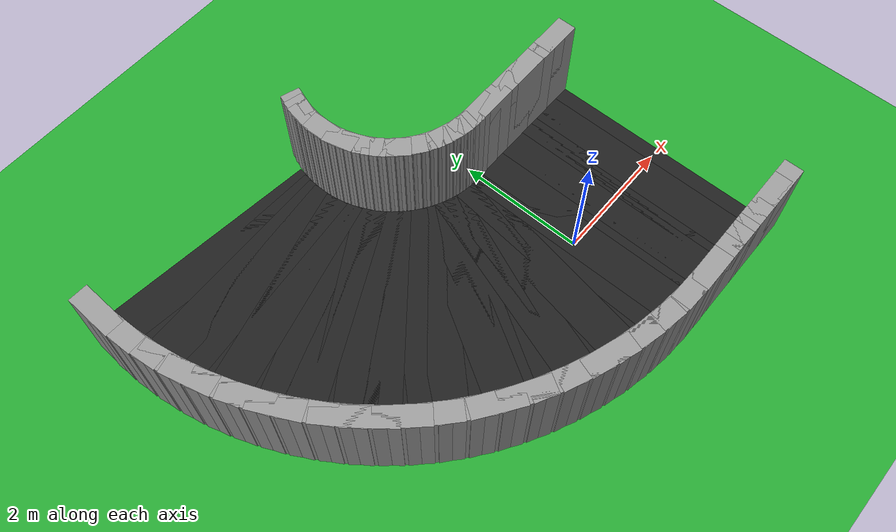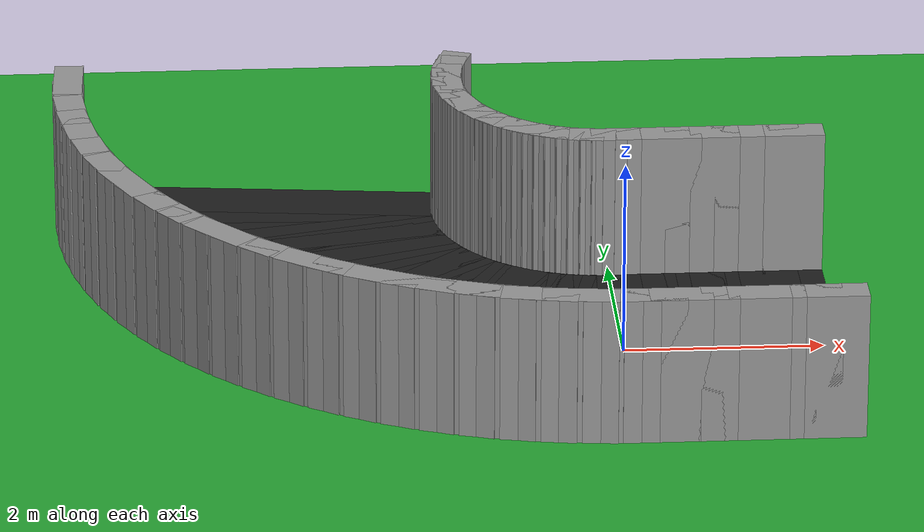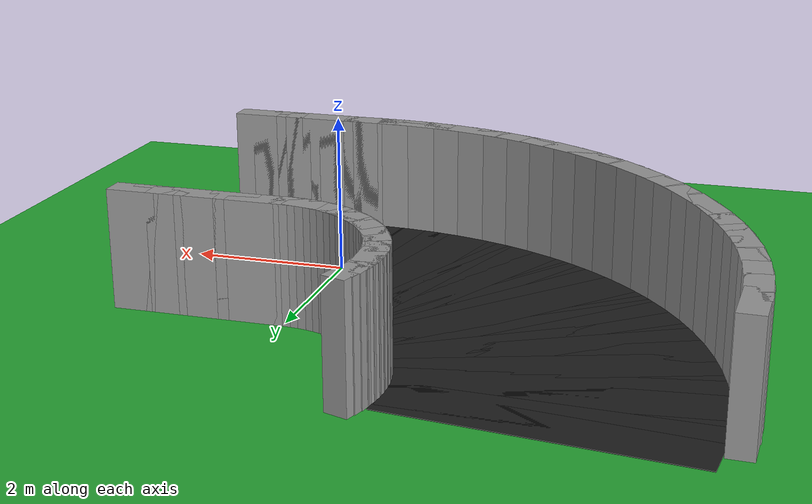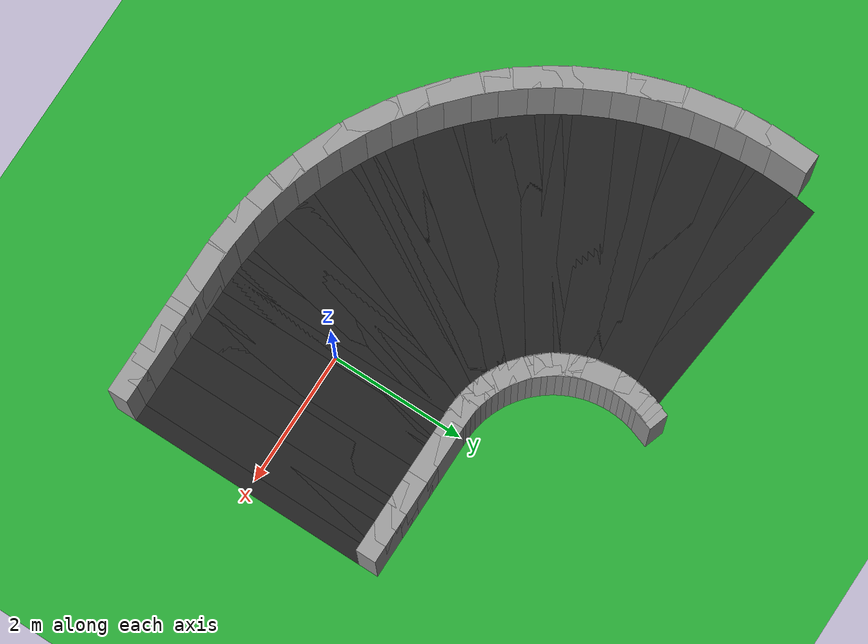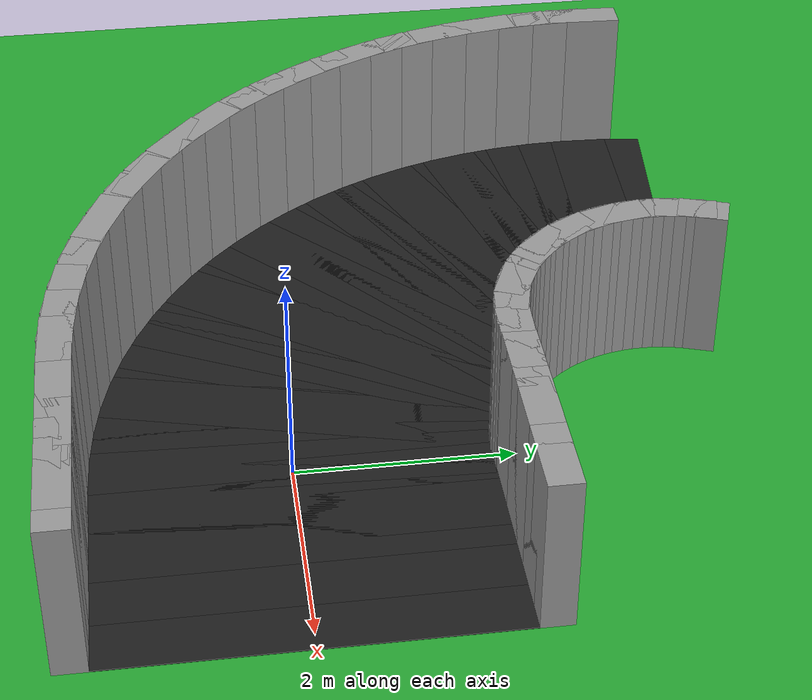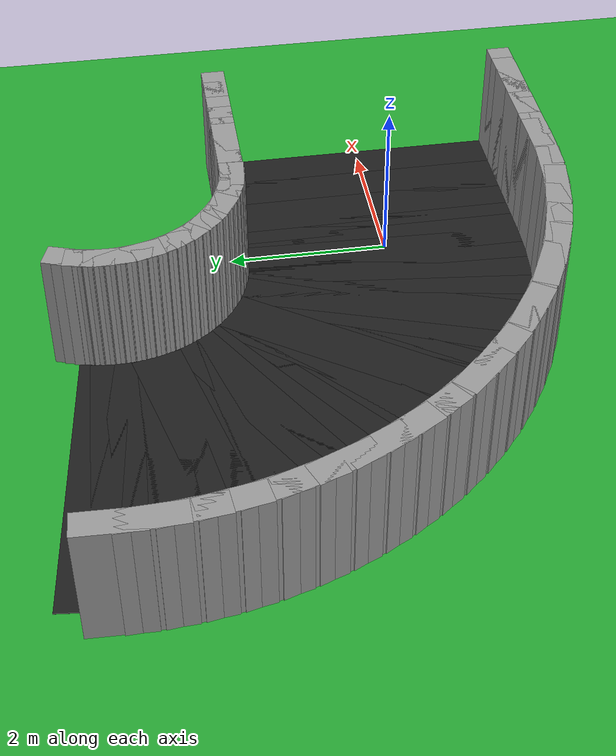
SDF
<sdf version="1.6">
 <world name="obstacle_tight">
  <include><uri>model://sun</uri></include>
  <model name="ground_plane">
   <static>true</static>
   <link name="link">
    <collision name="collision">
     <surface><friction><ode><mu>100</mu><mu2>50</mu2></ode></friction></surface>
     <geometry><plane><normal>0 0 1</normal><size>120 120</size></plane></geometry>
    </collision>
    <visual name="visual">
     <geometry><plane><normal>0 0 1</normal><size>120 120</size></plane></geometry>
     <material>
      <script><uri>file://media/materials/scripts/gazebo.material</uri><name>Gazebo/Green</name></script>
     </material>
    </visual>
   </link>
  </model>
  <model name="asphalt_0">
   <static>true</static>
   <pose>0.125 0.000 0.005 0 0 0.00000</pose>
   <link name="link">
    <visual name="visual">
     <geometry><box><size>0.610 3.600 0.010</size></box></geometry>
     <material>
      <script><uri>file://media/materials/scripts/gazebo.material</uri><name>Gazebo/Black</name></script>
     </material>
    </visual>
   </link>
  </model>
  <model name="curbL_0">
   <static>true</static>
   <pose>0.125 1.950 0.750 0 0 0.00000</pose>
   <link name="link">
    <collision name="collision"><geometry><box><size>0.610 0.300 1.500</size></box></geometry></collision>
    <visual name="visual">
     <geometry><box><size>0.610 0.300 1.500</size></box></geometry>
     <material>
      <script><uri>file://media/materials/scripts/gazebo.material</uri><name>Gazebo/Grey</name></script>
     </material>
    </visual>
   </link>
  </model>
  <model name="curbR_0">
   <static>true</static>
   <pose>0.125 -1.950 0.750 0 0 0.00000</pose>
   <link name="link">
    <collision name="collision"><geometry><box><size>0.610 0.300 1.500</size></box></geometry></collision>
    <visual name="visual">
     <geometry><box><size>0.610 0.300 1.500</size></box></geometry>
     <material>
      <script><uri>file://media/materials/scripts/gazebo.material</uri><name>Gazebo/Grey</name></script>
     </material>
    </visual>
   </link>
  </model>
  <model name="asphalt_1">
   <static>true</static>
   <pose>0.375 0.000 0.005 0 0 0.00000</pose>
   <link name="link">
    <visual name="visual">
     <geometry><box><size>0.610 3.600 0.010</size></box></geometry>
     <material>
      <script><uri>file://media/materials/scripts/gazebo.material</uri><name>Gazebo/Black</name></script>
     </material>
    </visual>
   </link>
  </model>
  <model name="curbL_1">
   <static>true</static>
   <pose>0.375 1.950 0.750 0 0 0.00000</pose>
   <link name="link">
    <collision name="collision"><geometry><box><size>0.610 0.300 1.500</size></box></geometry></collision>
    <visual name="visual">
     <geometry><box><size>0.610 0.300 1.500</size></box></geometry>
     <material>
      <script><uri>file://media/materials/scripts/gazebo.material</uri><name>Gazebo/Grey</name></script>
     </material>
    </visual>
   </link>
  </model>
  <model name="curbR_1">
   <static>true</static>
   <pose>0.375 -1.950 0.750 0 0 0.00000</pose>
   <link name="link">
    <collision name="collision"><geometry><box><size>0.610 0.300 1.500</size></box></geometry></collision>
    <visual name="visual">
     <geometry><box><size>0.610 0.300 1.500</size></box></geometry>
     <material>
      <script><uri>file://media/materials/scripts/gazebo.material</uri><name>Gazebo/Grey</name></script>
     </material>
    </visual>
   </link>
  </model>
  <model name="asphalt_2">
   <static>true</static>
   <pose>0.625 0.000 0.005 0 0 0.00000</pose>
   <link name="link">
    <visual name="visual">
     <geometry><box><size>0.610 3.600 0.010</size></box></geometry>
     <material>
      <script><uri>file://media/materials/scripts/gazebo.material</uri><name>Gazebo/Black</name></script>
     </material>
    </visual>
   </link>
  </model>
  <model name="curbL_2">
   <static>true</static>
   <pose>0.625 1.950 0.750 0 0 0.00000</pose>
   <link name="link">
    <collision name="collision"><geometry><box><size>0.610 0.300 1.500</size></box></geometry></collision>
    <visual name="visual">
     <geometry><box><size>0.610 0.300 1.500</size></box></geometry>
     <material>
      <script><uri>file://media/materials/scripts/gazebo.material</uri><name>Gazebo/Grey</name></script>
     </material>
    </visual>
   </link>
  </model>
  <model name="curbR_2">
   <static>true</static>
   <pose>0.625 -1.950 0.750 0 0 0.00000</pose>
   <link name="link">
    <collision name="collision"><geometry><box><size>0.610 0.300 1.500</size></box></geometry></collision>
    <visual name="visual">
     <geometry><box><size>0.610 0.300 1.500</size></box></geometry>
     <material>
      <script><uri>file://media/materials/scripts/gazebo.material</uri><name>Gazebo/Grey</name></script>
     </material>
    </visual>
   </link>
  </model>
  <model name="asphalt_3">
   <static>true</static>
   <pose>0.875 0.000 0.005 0 0 0.00000</pose>
   <link name="link">
    <visual name="visual">
     <geometry><box><size>0.610 3.600 0.010</size></box></geometry>
     <material>
      <script><uri>file://media/materials/scripts/gazebo.material</uri><name>Gazebo/Black</name></script>
     </material>
    </visual>
   </link>
  </model>
  <model name="curbL_3">
   <static>true</static>
   <pose>0.875 1.950 0.750 0 0 0.00000</pose>
   <link name="link">
    <collision name="collision"><geometry><box><size>0.610 0.300 1.500</size></box></geometry></collision>
    <visual name="visual">
     <geometry><box><size>0.610 0.300 1.500</size></box></geometry>
     <material>
      <script><uri>file://media/materials/scripts/gazebo.material</uri><name>Gazebo/Grey</name></script>
     </material>
    </visual>
   </link>
  </model>
  <model name="curbR_3">
   <static>true</static>
   <pose>0.875 -1.950 0.750 0 0 0.00000</pose>
   <link name="link">
    <collision name="collision"><geometry><box><size>0.610 0.300 1.500</size></box></geometry></collision>
    <visual name="visual">
     <geometry><box><size>0.610 0.300 1.500</size></box></geometry>
     <material>
      <script><uri>file://media/materials/scripts/gazebo.material</uri><name>Gazebo/Grey</name></script>
     </material>
    </visual>
   </link>
  </model>
  <model name="asphalt_4">
   <static>true</static>
   <pose>1.125 0.000 0.005 0 0 0.00000</pose>
   <link name="link">
    <visual name="visual">
     <geometry><box><size>0.610 3.600 0.010</size></box></geometry>
     <material>
      <script><uri>file://media/materials/scripts/gazebo.material</uri><name>Gazebo/Black</name></script>
     </material>
    </visual>
   </link>
  </model>
  <model name="curbL_4">
   <static>true</static>
   <pose>1.125 1.950 0.750 0 0 0.00000</pose>
   <link name="link">
    <collision name="collision"><geometry><box><size>0.610 0.300 1.500</size></box></geometry></collision>
    <visual name="visual">
     <geometry><box><size>0.610 0.300 1.500</size></box></geometry>
     <material>
      <script><uri>file://media/materials/scripts/gazebo.material</uri><name>Gazebo/Grey</name></script>
     </material>
    </visual>
   </link>
  </model>
  <model name="curbR_4">
   <static>true</static>
   <pose>1.125 -1.950 0.750 0 0 0.00000</pose>
   <link name="link">
    <collision name="collision"><geometry><box><size>0.610 0.300 1.500</size></box></geometry></collision>
    <visual name="visual">
     <geometry><box><size>0.610 0.300 1.500</size></box></geometry>
     <material>
      <script><uri>file://media/materials/scripts/gazebo.material</uri><name>Gazebo/Grey</name></script>
     </material>
    </visual>
   </link>
  </model>
  <model name="asphalt_5">
   <static>true</static>
   <pose>1.375 0.000 0.005 0 0 0.00000</pose>
   <link name="link">
    <visual name="visual">
     <geometry><box><size>0.610 3.600 0.010</size></box></geometry>
     <material>
      <script><uri>file://media/materials/scripts/gazebo.material</uri><name>Gazebo/Black</name></script>
     </material>
    </visual>
   </link>
  </model>
  <model name="curbL_5">
   <static>true</static>
   <pose>1.375 1.950 0.750 0 0 0.00000</pose>
   <link name="link">
    <collision name="collision"><geometry><box><size>0.610 0.300 1.500</size></box></geometry></collision>
    <visual name="visual">
     <geometry><box><size>0.610 0.300 1.500</size></box></geometry>
     <material>
      <script><uri>file://media/materials/scripts/gazebo.material</uri><name>Gazebo/Grey</name></script>
     </material>
    </visual>
   </link>
  </model>
  <model name="curbR_5">
   <static>true</static>
   <pose>1.375 -1.950 0.750 0 0 0.00000</pose>
   <link name="link">
    <collision name="collision"><geometry><box><size>0.610 0.300 1.500</size></box></geometry></collision>
    <visual name="visual">
     <geometry><box><size>0.610 0.300 1.500</size></box></geometry>
     <material>
      <script><uri>file://media/materials/scripts/gazebo.material</uri><name>Gazebo/Grey</name></script>
     </material>
    </visual>
   </link>
  </model>
  <model name="asphalt_6">
   <static>true</static>
   <pose>1.625 0.000 0.005 0 0 0.00000</pose>
   <link name="link">
    <visual name="visual">
     <geometry><box><size>0.610 3.600 0.010</size></box></geometry>
     <material>
      <script><uri>file://media/materials/scripts/gazebo.material</uri><name>Gazebo/Black</name></script>
     </material>
    </visual>
   </link>
  </model>
  <model name="curbL_6">
   <static>true</static>
   <pose>1.625 1.950 0.750 0 0 0.00000</pose>
   <link name="link">
    <collision name="collision"><geometry><box><size>0.610 0.300 1.500</size></box></geometry></collision>
    <visual name="visual">
     <geometry><box><size>0.610 0.300 1.500</size></box></geometry>
     <material>
      <script><uri>file://media/materials/scripts/gazebo.material</uri><name>Gazebo/Grey</name></script>
     </material>
    </visual>
   </link>
  </model>
  <model name="curbR_6">
   <static>true</static>
   <pose>1.625 -1.950 0.750 0 0 0.00000</pose>
   <link name="link">
    <collision name="collision"><geometry><box><size>0.610 0.300 1.500</size></box></geometry></collision>
    <visual name="visual">
     <geometry><box><size>0.610 0.300 1.500</size></box></geometry>
     <material>
      <script><uri>file://media/materials/scripts/gazebo.material</uri><name>Gazebo/Grey</name></script>
     </material>
    </visual>
   </link>
  </model>
  <model name="asphalt_7">
   <static>true</static>
   <pose>1.875 0.000 0.005 0 0 0.00000</pose>
   <link name="link">
    <visual name="visual">
     <geometry><box><size>0.610 3.600 0.010</size></box></geometry>
     <material>
      <script><uri>file://media/materials/scripts/gazebo.material</uri><name>Gazebo/Black</name></script>
     </material>
    </visual>
   </link>
  </model>
  <model name="curbL_7">
   <static>true</static>
   <pose>1.875 1.950 0.750 0 0 0.00000</pose>
   <link name="link">
    <collision name="collision"><geometry><box><size>0.610 0.300 1.500</size></box></geometry></collision>
    <visual name="visual">
     <geometry><box><size>0.610 0.300 1.500</size></box></geometry>
     <material>
      <script><uri>file://media/materials/scripts/gazebo.material</uri><name>Gazebo/Grey</name></script>
     </material>
    </visual>
   </link>
  </model>
  <model name="curbR_7">
   <static>true</static>
   <pose>1.875 -1.950 0.750 0 0 0.00000</pose>
   <link name="link">
    <collision name="collision"><geometry><box><size>0.610 0.300 1.500</size></box></geometry></collision>
    <visual name="visual">
     <geometry><box><size>0.610 0.300 1.500</size></box></geometry>
     <material>
      <script><uri>file://media/materials/scripts/gazebo.material</uri><name>Gazebo/Grey</name></script>
     </material>
    </visual>
   </link>
  </model>
  <model name="curbL_297">
   <static>true</static>
   <pose>-1.470 3.990 0.750 0 0 -1.89210</pose>
   <link name="link">
    <collision name="collision"><geometry><box><size>0.471 0.300 1.500</size></box></geometry></collision>
    <visual name="visual">
     <geometry><box><size>0.471 0.300 1.500</size></box></geometry>
     <material>
      <script><uri>file://media/materials/scripts/gazebo.material</uri><name>Gazebo/Grey</name></script>
     </material>
    </visual>
   </link>
  </model>
  <model name="curbL_298">
   <static>true</static>
   <pose>-1.502 3.884 0.750 0 0 -1.82070</pose>
   <link name="link">
    <collision name="collision"><geometry><box><size>0.471 0.300 1.500</size></box></geometry></collision>
    <visual name="visual">
     <geometry><box><size>0.471 0.300 1.500</size></box></geometry>
     <material>
      <script><uri>file://media/materials/scripts/gazebo.material</uri><name>Gazebo/Grey</name></script>
     </material>
    </visual>
   </link>
  </model>
  <model name="curbL_299">
   <static>true</static>
   <pose>-1.525 3.776 0.750 0 0 -1.74930</pose>
   <link name="link">
    <collision name="collision"><geometry><box><size>0.471 0.300 1.500</size></box></geometry></collision>
    <visual name="visual">
     <geometry><box><size>0.471 0.300 1.500</size></box></geometry>
     <material>
      <script><uri>file://media/materials/scripts/gazebo.material</uri><name>Gazebo/Grey</name></script>
     </material>
    </visual>
   </link>
  </model>
  <model name="asphalt_300">
   <static>true</static>
   <pose>-3.478 3.875 0.005 0 0 -1.67790</pose>
   <link name="link">
    <visual name="visual">
     <geometry><box><size>0.610 3.600 0.010</size></box></geometry>
     <material>
      <script><uri>file://media/materials/scripts/gazebo.material</uri><name>Gazebo/Black</name></script>
     </material>
    </visual>
   </link>
  </model>
  <model name="curbL_300">
   <static>true</static>
   <pose>-1.541 3.666 0.750 0 0 -1.67790</pose>
   <link name="link">
    <collision name="collision"><geometry><box><size>0.471 0.300 1.500</size></box></geometry></collision>
    <visual name="visual">
     <geometry><box><size>0.471 0.300 1.500</size></box></geometry>
     <material>
      <script><uri>file://media/materials/scripts/gazebo.material</uri><name>Gazebo/Grey</name></script>
     </material>
    </visual>
   </link>
  </model>
  <model name="asphalt_301">
   <static>true</static>
   <pose>-3.496 3.626 0.005 0 0 -1.60650</pose>
   <link name="link">
    <visual name="visual">
     <geometry><box><size>0.610 3.600 0.010</size></box></geometry>
     <material>
      <script><uri>file://media/materials/scripts/gazebo.material</uri><name>Gazebo/Black</name></script>
     </material>
    </visual>
   </link>
  </model>
  <model name="curbL_301">
   <static>true</static>
   <pose>-1.549 3.556 0.750 0 0 -1.60650</pose>
   <link name="link">
    <collision name="collision"><geometry><box><size>0.471 0.300 1.500</size></box></geometry></collision>
    <visual name="visual">
     <geometry><box><size>0.471 0.300 1.500</size></box></geometry>
     <material>
      <script><uri>file://media/materials/scripts/gazebo.material</uri><name>Gazebo/Grey</name></script>
     </material>
    </visual>
   </link>
  </model>
  <model name="curbR_301">
   <static>true</static>
   <pose>-5.444 3.695 0.750 0 0 -1.60650</pose>
   <link name="link">
    <collision name="collision"><geometry><box><size>0.749 0.300 1.500</size></box></geometry></collision>
    <visual name="visual">
     <geometry><box><size>0.749 0.300 1.500</size></box></geometry>
     <material>
      <script><uri>file://media/materials/scripts/gazebo.material</uri><name>Gazebo/Grey</name></script>
     </material>
    </visual>
   </link>
  </model>
  <model name="asphalt_302">
   <static>true</static>
   <pose>-3.496 3.376 0.005 0 0 -1.53510</pose>
   <link name="link">
    <visual name="visual">
     <geometry><box><size>0.610 3.600 0.010</size></box></geometry>
     <material>
      <script><uri>file://media/materials/scripts/gazebo.material</uri><name>Gazebo/Black</name></script>
     </material>
    </visual>
   </link>
  </model>
  <model name="curbL_302">
   <static>true</static>
   <pose>-1.549 3.445 0.750 0 0 -1.53510</pose>
   <link name="link">
    <collision name="collision"><geometry><box><size>0.471 0.300 1.500</size></box></geometry></collision>
    <visual name="visual">
     <geometry><box><size>0.471 0.300 1.500</size></box></geometry>
     <material>
      <script><uri>file://media/materials/scripts/gazebo.material</uri><name>Gazebo/Grey</name></script>
     </material>
    </visual>
   </link>
  </model>
  <model name="curbR_302">
   <static>true</static>
   <pose>-5.444 3.306 0.750 0 0 -1.53510</pose>
   <link name="link">
    <collision name="collision"><geometry><box><size>0.749 0.300 1.500</size></box></geometry></collision>
    <visual name="visual">
     <geometry><box><size>0.749 0.300 1.500</size></box></geometry>
     <material>
      <script><uri>file://media/materials/scripts/gazebo.material</uri><name>Gazebo/Grey</name></script>
     </material>
    </visual>
   </link>
  </model>
  <model name="asphalt_303">
   <static>true</static>
   <pose>-3.478 3.127 0.005 0 0 -1.46370</pose>
   <link name="link">
    <visual name="visual">
     <geometry><box><size>0.610 3.600 0.010</size></box></geometry>
     <material>
      <script><uri>file://media/materials/scripts/gazebo.material</uri><name>Gazebo/Black</name></script>
     </material>
    </visual>
   </link>
  </model>
  <model name="curbL_303">
   <static>true</static>
   <pose>-1.541 3.335 0.750 0 0 -1.46370</pose>
   <link name="link">
    <collision name="collision"><geometry><box><size>0.471 0.300 1.500</size></box></geometry></collision>
    <visual name="visual">
     <geometry><box><size>0.471 0.300 1.500</size></box></geometry>
     <material>
      <script><uri>file://media/materials/scripts/gazebo.material</uri><name>Gazebo/Grey</name></script>
     </material>
    </visual>
   </link>
  </model>
  <model name="curbR_303">
   <static>true</static>
   <pose>-5.416 2.918 0.750 0 0 -1.46370</pose>
   <link name="link">
    <collision name="collision"><geometry><box><size>0.749 0.300 1.500</size></box></geometry></collision>
    <visual name="visual">
     <geometry><box><size>0.749 0.300 1.500</size></box></geometry>
     <material>
      <script><uri>file://media/materials/scripts/gazebo.material</uri><name>Gazebo/Grey</name></script>
     </material>
    </visual>
   </link>
  </model>
  <model name="asphalt_304">
   <static>true</static>
   <pose>-3.443 2.880 0.005 0 0 -1.39230</pose>
   <link name="link">
    <visual name="visual">
     <geometry><box><size>0.610 3.600 0.010</size></box></geometry>
     <material>
      <script><uri>file://media/materials/scripts/gazebo.material</uri><name>Gazebo/Black</name></script>
     </material>
    </visual>
   </link>
  </model>
  <model name="curbL_304">
   <static>true</static>
   <pose>-1.525 3.226 0.750 0 0 -1.39230</pose>
   <link name="link">
    <collision name="collision"><geometry><box><size>0.471 0.300 1.500</size></box></geometry></collision>
    <visual name="visual">
     <geometry><box><size>0.471 0.300 1.500</size></box></geometry>
     <material>
      <script><uri>file://media/materials/scripts/gazebo.material</uri><name>Gazebo/Grey</name></script>
     </material>
    </visual>
   </link>
  </model>
  <model name="curbR_304">
   <static>true</static>
   <pose>-5.361 2.534 0.750 0 0 -1.39230</pose>
   <link name="link">
    <collision name="collision"><geometry><box><size>0.749 0.300 1.500</size></box></geometry></collision>
    <visual name="visual">
     <geometry><box><size>0.749 0.300 1.500</size></box></geometry>
     <material>
      <script><uri>file://media/materials/scripts/gazebo.material</uri><name>Gazebo/Grey</name></script>
     </material>
    </visual>
   </link>
  </model>
  <model name="asphalt_305">
   <static>true</static>
   <pose>-3.390 2.636 0.005 0 0 -1.32090</pose>
   <link name="link">
    <visual name="visual">
     <geometry><box><size>0.610 3.600 0.010</size></box></geometry>
     <material>
      <script><uri>file://media/materials/scripts/gazebo.material</uri><name>Gazebo/Black</name></script>
     </material>
    </visual>
   </link>
  </model>
  <model name="curbL_305">
   <static>true</static>
   <pose>-1.502 3.117 0.750 0 0 -1.32090</pose>
   <link name="link">
    <collision name="collision"><geometry><box><size>0.471 0.300 1.500</size></box></geometry></collision>
    <visual name="visual">
     <geometry><box><size>0.471 0.300 1.500</size></box></geometry>
     <material>
      <script><uri>file://media/materials/scripts/gazebo.material</uri><name>Gazebo/Grey</name></script>
     </material>
    </visual>
   </link>
  </model>
  <model name="curbR_305">
   <static>true</static>
   <pose>-5.278 2.154 0.750 0 0 -1.32090</pose>
   <link name="link">
    <collision name="collision"><geometry><box><size>0.749 0.300 1.500</size></box></geometry></collision>
    <visual name="visual">
     <geometry><box><size>0.749 0.300 1.500</size></box></geometry>
     <material>
      <script><uri>file://media/materials/scripts/gazebo.material</uri><name>Gazebo/Grey</name></script>
     </material>
    </visual>
   </link>
  </model>
  <model name="asphalt_306">
   <static>true</static>
   <pose>-3.319 2.396 0.005 0 0 -1.24950</pose>
   <link name="link">
    <visual name="visual">
     <geometry><box><size>0.610 3.600 0.010</size></box></geometry>
     <material>
      <script><uri>file://media/materials/scripts/gazebo.material</uri><name>Gazebo/Black</name></script>
     </material>
    </visual>
   </link>
  </model>
  <model name="curbL_306">
   <static>true</static>
   <pose>-1.470 3.011 0.750 0 0 -1.24950</pose>
   <link name="link">
    <collision name="collision"><geometry><box><size>0.471 0.300 1.500</size></box></geometry></collision>
    <visual name="visual">
     <geometry><box><size>0.471 0.300 1.500</size></box></geometry>
     <material>
      <script><uri>file://media/materials/scripts/gazebo.material</uri><name>Gazebo/Grey</name></script>
     </material>
    </visual>
   </link>
  </model>
  <model name="curbR_306">
   <static>true</static>
   <pose>-5.169 1.780 0.750 0 0 -1.24950</pose>
   <link name="link">
    <collision name="collision"><geometry><box><size>0.749 0.300 1.500</size></box></geometry></collision>
    <visual name="visual">
     <geometry><box><size>0.749 0.300 1.500</size></box></geometry>
     <material>
      <script><uri>file://media/materials/scripts/gazebo.material</uri><name>Gazebo/Grey</name></script>
     </material>
    </visual>
   </link>
  </model>
  <model name="asphalt_307">
   <static>true</static>
   <pose>-3.232 2.162 0.005 0 0 -1.17810</pose>
   <link name="link">
    <visual name="visual">
     <geometry><box><size>0.610 3.600 0.010</size></box></geometry>
     <material>
      <script><uri>file://media/materials/scripts/gazebo.material</uri><name>Gazebo/Black</name></script>
     </material>
    </visual>
   </link>
  </model>
  <model name="curbL_307">
   <static>true</static>
   <pose>-1.432 2.908 0.750 0 0 -1.17810</pose>
   <link name="link">
    <collision name="collision"><geometry><box><size>0.471 0.300 1.500</size></box></geometry></collision>
    <visual name="visual">
     <geometry><box><size>0.471 0.300 1.500</size></box></geometry>
     <material>
      <script><uri>file://media/materials/scripts/gazebo.material</uri><name>Gazebo/Grey</name></script>
     </material>
    </visual>
   </link>
  </model>
  <model name="curbR_307">
   <static>true</static>
   <pose>-5.033 1.416 0.750 0 0 -1.17810</pose>
   <link name="link">
    <collision name="collision"><geometry><box><size>0.749 0.300 1.500</size></box></geometry></collision>
    <visual name="visual">
     <geometry><box><size>0.749 0.300 1.500</size></box></geometry>
     <material>
      <script><uri>file://media/materials/scripts/gazebo.material</uri><name>Gazebo/Grey</name></script>
     </material>
    </visual>
   </link>
  </model>
  <model name="asphalt_308">
   <static>true</static>
   <pose>-3.128 1.935 0.005 0 0 -1.10670</pose>
   <link name="link">
    <visual name="visual">
     <geometry><box><size>0.610 3.600 0.010</size></box></geometry>
     <material>
      <script><uri>file://media/materials/scripts/gazebo.material</uri><name>Gazebo/Black</name></script>
     </material>
    </visual>
   </link>
  </model>
  <model name="curbL_308">
   <static>true</static>
   <pose>-1.386 2.807 0.750 0 0 -1.10670</pose>
   <link name="link">
    <collision name="collision"><geometry><box><size>0.471 0.300 1.500</size></box></geometry></collision>
    <visual name="visual">
     <geometry><box><size>0.471 0.300 1.500</size></box></geometry>
     <material>
      <script><uri>file://media/materials/scripts/gazebo.material</uri><name>Gazebo/Grey</name></script>
     </material>
    </visual>
   </link>
  </model>
  <model name="curbR_308">
   <static>true</static>
   <pose>-4.871 1.062 0.750 0 0 -1.10670</pose>
   <link name="link">
    <collision name="collision"><geometry><box><size>0.749 0.300 1.500</size></box></geometry></collision>
    <visual name="visual">
     <geometry><box><size>0.749 0.300 1.500</size></box></geometry>
     <material>
      <script><uri>file://media/materials/scripts/gazebo.material</uri><name>Gazebo/Grey</name></script>
     </material>
    </visual>
   </link>
  </model>
  <model name="asphalt_309">
   <static>true</static>
   <pose>-3.009 1.716 0.005 0 0 -1.03530</pose>
   <link name="link">
    <visual name="visual">
     <geometry><box><size>0.610 3.600 0.010</size></box></geometry>
     <material>
      <script><uri>file://media/materials/scripts/gazebo.material</uri><name>Gazebo/Black</name></script>
     </material>
    </visual>
   </link>
  </model>
  <model name="curbL_309">
   <static>true</static>
   <pose>-1.333 2.710 0.750 0 0 -1.03530</pose>
   <link name="link">
    <collision name="collision"><geometry><box><size>0.471 0.300 1.500</size></box></geometry></collision>
    <visual name="visual">
     <geometry><box><size>0.471 0.300 1.500</size></box></geometry>
     <material>
      <script><uri>file://media/materials/scripts/gazebo.material</uri><name>Gazebo/Grey</name></script>
     </material>
    </visual>
   </link>
  </model>
  <model name="curbR_309">
   <static>true</static>
   <pose>-4.685 0.721 0.750 0 0 -1.03530</pose>
   <link name="link">
    <collision name="collision"><geometry><box><size>0.749 0.300 1.500</size></box></geometry></collision>
    <visual name="visual">
     <geometry><box><size>0.749 0.300 1.500</size></box></geometry>
     <material>
      <script><uri>file://media/materials/scripts/gazebo.material</uri><name>Gazebo/Grey</name></script>
     </material>
    </visual>
   </link>
  </model>
  <model name="asphalt_310">
   <static>true</static>
   <pose>-2.874 1.505 0.005 0 0 -0.96390</pose>
   <link name="link">
    <visual name="visual">
     <geometry><box><size>0.610 3.600 0.010</size></box></geometry>
     <material>
      <script><uri>file://media/materials/scripts/gazebo.material</uri><name>Gazebo/Black</name></script>
     </material>
    </visual>
   </link>
  </model>
  <model name="curbL_310">
   <static>true</static>
   <pose>-1.273 2.617 0.750 0 0 -0.96390</pose>
   <link name="link">
    <collision name="collision"><geometry><box><size>0.471 0.300 1.500</size></box></geometry></collision>
    <visual name="visual">
     <geometry><box><size>0.471 0.300 1.500</size></box></geometry>
     <material>
      <script><uri>file://media/materials/scripts/gazebo.material</uri><name>Gazebo/Grey</name></script>
     </material>
    </visual>
   </link>
  </model>
  <model name="curbR_310">
   <static>true</static>
   <pose>-4.475 0.394 0.750 0 0 -0.96390</pose>
   <link name="link">
    <collision name="collision"><geometry><box><size>0.749 0.300 1.500</size></box></geometry></collision>
    <visual name="visual">
     <geometry><box><size>0.749 0.300 1.500</size></box></geometry>
     <material>
      <script><uri>file://media/materials/scripts/gazebo.material</uri><name>Gazebo/Grey</name></script>
     </material>
    </visual>
   </link>
  </model>
  <model name="asphalt_311">
   <static>true</static>
   <pose>-2.724 1.306 0.005 0 0 -0.89250</pose>
   <link name="link">
    <visual name="visual">
     <geometry><box><size>0.610 3.600 0.010</size></box></geometry>
     <material>
      <script><uri>file://media/materials/scripts/gazebo.material</uri><name>Gazebo/Black</name></script>
     </material>
    </visual>
   </link>
  </model>
  <model name="curbL_311">
   <static>true</static>
   <pose>-1.207 2.528 0.750 0 0 -0.89250</pose>
   <link name="link">
    <collision name="collision"><geometry><box><size>0.471 0.300 1.500</size></box></geometry></collision>
    <visual name="visual">
     <geometry><box><size>0.471 0.300 1.500</size></box></geometry>
     <material>
      <script><uri>file://media/materials/scripts/gazebo.material</uri><name>Gazebo/Grey</name></script>
     </material>
    </visual>
   </link>
  </model>
  <model name="curbR_311">
   <static>true</static>
   <pose>-4.241 0.083 0.750 0 0 -0.89250</pose>
   <link name="link">
    <collision name="collision"><geometry><box><size>0.749 0.300 1.500</size></box></geometry></collision>
    <visual name="visual">
     <geometry><box><size>0.749 0.300 1.500</size></box></geometry>
     <material>
      <script><uri>file://media/materials/scripts/gazebo.material</uri><name>Gazebo/Grey</name></script>
     </material>
    </visual>
   </link>
  </model>
  <model name="asphalt_312">
   <static>true</static>
   <pose>-2.561 1.117 0.005 0 0 -0.82110</pose>
   <link name="link">
    <visual name="visual">
     <geometry><box><size>0.610 3.600 0.010</size></box></geometry>
     <material>
      <script><uri>file://media/materials/scripts/gazebo.material</uri><name>Gazebo/Black</name></script>
     </material>
    </visual>
   </link>
  </model>
  <model name="curbL_312">
   <static>true</static>
   <pose>-1.134 2.445 0.750 0 0 -0.82110</pose>
   <link name="link">
    <collision name="collision"><geometry><box><size>0.471 0.300 1.500</size></box></geometry></collision>
    <visual name="visual">
     <geometry><box><size>0.471 0.300 1.500</size></box></geometry>
     <material>
      <script><uri>file://media/materials/scripts/gazebo.material</uri><name>Gazebo/Grey</name></script>
     </material>
    </visual>
   </link>
  </model>
  <model name="curbR_312">
   <static>true</static>
   <pose>-3.987 -0.211 0.750 0 0 -0.82110</pose>
   <link name="link">
    <collision name="collision"><geometry><box><size>0.749 0.300 1.500</size></box></geometry></collision>
    <visual name="visual">
     <geometry><box><size>0.749 0.300 1.500</size></box></geometry>
     <material>
      <script><uri>file://media/materials/scripts/gazebo.material</uri><name>Gazebo/Grey</name></script>
     </material>
    </visual>
   </link>
  </model>
  <model name="asphalt_313">
   <static>true</static>
   <pose>-2.384 0.940 0.005 0 0 -0.74970</pose>
   <link name="link">
    <visual name="visual">
     <geometry><box><size>0.610 3.600 0.010</size></box></geometry>
     <material>
      <script><uri>file://media/materials/scripts/gazebo.material</uri><name>Gazebo/Black</name></script>
     </material>
    </visual>
   </link>
  </model>
  <model name="curbL_313">
   <static>true</static>
   <pose>-1.056 2.366 0.750 0 0 -0.74970</pose>
   <link name="link">
    <collision name="collision"><geometry><box><size>0.471 0.300 1.500</size></box></geometry></collision>
    <visual name="visual">
     <geometry><box><size>0.471 0.300 1.500</size></box></geometry>
     <material>
      <script><uri>file://media/materials/scripts/gazebo.material</uri><name>Gazebo/Grey</name></script>
     </material>
    </visual>
   </link>
  </model>
  <model name="curbR_313">
   <static>true</static>
   <pose>-3.712 -0.486 0.750 0 0 -0.74970</pose>
   <link name="link">
    <collision name="collision"><geometry><box><size>0.749 0.300 1.500</size></box></geometry></collision>
    <visual name="visual">
     <geometry><box><size>0.749 0.300 1.500</size></box></geometry>
     <material>
      <script><uri>file://media/materials/scripts/gazebo.material</uri><name>Gazebo/Grey</name></script>
     </material>
    </visual>
   </link>
  </model>
  <model name="asphalt_314">
   <static>true</static>
   <pose>-2.195 0.777 0.005 0 0 -0.67830</pose>
   <link name="link">
    <visual name="visual">
     <geometry><box><size>0.610 3.600 0.010</size></box></geometry>
     <material>
      <script><uri>file://media/materials/scripts/gazebo.material</uri><name>Gazebo/Black</name></script>
     </material>
    </visual>
   </link>
  </model>
  <model name="curbL_314">
   <static>true</static>
   <pose>-0.972 2.294 0.750 0 0 -0.67830</pose>
   <link name="link">
    <collision name="collision"><geometry><box><size>0.471 0.300 1.500</size></box></geometry></collision>
    <visual name="visual">
     <geometry><box><size>0.471 0.300 1.500</size></box></geometry>
     <material>
      <script><uri>file://media/materials/scripts/gazebo.material</uri><name>Gazebo/Grey</name></script>
     </material>
    </visual>
   </link>
  </model>
  <model name="curbR_314">
   <static>true</static>
   <pose>-3.418 -0.741 0.750 0 0 -0.67830</pose>
   <link name="link">
    <collision name="collision"><geometry><box><size>0.749 0.300 1.500</size></box></geometry></collision>
    <visual name="visual">
     <geometry><box><size>0.749 0.300 1.500</size></box></geometry>
     <material>
      <script><uri>file://media/materials/scripts/gazebo.material</uri><name>Gazebo/Grey</name></script>
     </material>
    </visual>
   </link>
  </model>
  <model name="asphalt_315">
   <static>true</static>
   <pose>-1.995 0.627 0.005 0 0 -0.60690</pose>
   <link name="link">
    <visual name="visual">
     <geometry><box><size>0.610 3.600 0.010</size></box></geometry>
     <material>
      <script><uri>file://media/materials/scripts/gazebo.material</uri><name>Gazebo/Black</name></script>
     </material>
    </visual>
   </link>
  </model>
  <model name="curbL_315">
   <static>true</static>
   <pose>-0.884 2.228 0.750 0 0 -0.60690</pose>
   <link name="link">
    <collision name="collision"><geometry><box><size>0.471 0.300 1.500</size></box></geometry></collision>
    <visual name="visual">
     <geometry><box><size>0.471 0.300 1.500</size></box></geometry>
     <material>
      <script><uri>file://media/materials/scripts/gazebo.material</uri><name>Gazebo/Grey</name></script>
     </material>
    </visual>
   </link>
  </model>
  <model name="curbR_315">
   <static>true</static>
   <pose>-3.107 -0.974 0.750 0 0 -0.60690</pose>
   <link name="link">
    <collision name="collision"><geometry><box><size>0.749 0.300 1.500</size></box></geometry></collision>
    <visual name="visual">
     <geometry><box><size>0.749 0.300 1.500</size></box></geometry>
     <material>
      <script><uri>file://media/materials/scripts/gazebo.material</uri><name>Gazebo/Grey</name></script>
     </material>
    </visual>
   </link>
  </model>
  <model name="asphalt_316">
   <static>true</static>
   <pose>-1.785 0.492 0.005 0 0 -0.53550</pose>
   <link name="link">
    <visual name="visual">
     <geometry><box><size>0.610 3.600 0.010</size></box></geometry>
     <material>
      <script><uri>file://media/materials/scripts/gazebo.material</uri><name>Gazebo/Black</name></script>
     </material>
    </visual>
   </link>
  </model>
  <model name="curbL_316">
   <static>true</static>
   <pose>-0.791 2.168 0.750 0 0 -0.53550</pose>
   <link name="link">
    <collision name="collision"><geometry><box><size>0.471 0.300 1.500</size></box></geometry></collision>
    <visual name="visual">
     <geometry><box><size>0.471 0.300 1.500</size></box></geometry>
     <material>
      <script><uri>file://media/materials/scripts/gazebo.material</uri><name>Gazebo/Grey</name></script>
     </material>
    </visual>
   </link>
  </model>
  <model name="curbR_316">
   <static>true</static>
   <pose>-2.780 -1.184 0.750 0 0 -0.53550</pose>
   <link name="link">
    <collision name="collision"><geometry><box><size>0.749 0.300 1.500</size></box></geometry></collision>
    <visual name="visual">
     <geometry><box><size>0.749 0.300 1.500</size></box></geometry>
     <material>
      <script><uri>file://media/materials/scripts/gazebo.material</uri><name>Gazebo/Grey</name></script>
     </material>
    </visual>
   </link>
  </model>
  <model name="asphalt_317">
   <static>true</static>
   <pose>-1.566 0.372 0.005 0 0 -0.46410</pose>
   <link name="link">
    <visual name="visual">
     <geometry><box><size>0.610 3.600 0.010</size></box></geometry>
     <material>
      <script><uri>file://media/materials/scripts/gazebo.material</uri><name>Gazebo/Black</name></script>
     </material>
    </visual>
   </link>
  </model>
  <model name="curbL_317">
   <static>true</static>
   <pose>-0.694 2.115 0.750 0 0 -0.46410</pose>
   <link name="link">
    <collision name="collision"><geometry><box><size>0.471 0.300 1.500</size></box></geometry></collision>
    <visual name="visual">
     <geometry><box><size>0.471 0.300 1.500</size></box></geometry>
     <material>
      <script><uri>file://media/materials/scripts/gazebo.material</uri><name>Gazebo/Grey</name></script>
     </material>
    </visual>
   </link>
  </model>
  <model name="curbR_317">
   <static>true</static>
   <pose>-2.438 -1.370 0.750 0 0 -0.46410</pose>
   <link name="link">
    <collision name="collision"><geometry><box><size>0.749 0.300 1.500</size></box></geometry></collision>
    <visual name="visual">
     <geometry><box><size>0.749 0.300 1.500</size></box></geometry>
     <material>
      <script><uri>file://media/materials/scripts/gazebo.material</uri><name>Gazebo/Grey</name></script>
     </material>
    </visual>
   </link>
  </model>
  <model name="asphalt_318">
   <static>true</static>
   <pose>-1.339 0.269 0.005 0 0 -0.39270</pose>
   <link name="link">
    <visual name="visual">
     <geometry><box><size>0.610 3.600 0.010</size></box></geometry>
     <material>
      <script><uri>file://media/materials/scripts/gazebo.material</uri><name>Gazebo/Black</name></script>
     </material>
    </visual>
   </link>
  </model>
  <model name="curbL_318">
   <static>true</static>
   <pose>-0.593 2.069 0.750 0 0 -0.39270</pose>
   <link name="link">
    <collision name="collision"><geometry><box><size>0.471 0.300 1.500</size></box></geometry></collision>
    <visual name="visual">
     <geometry><box><size>0.471 0.300 1.500</size></box></geometry>
     <material>
      <script><uri>file://media/materials/scripts/gazebo.material</uri><name>Gazebo/Grey</name></script>
     </material>
    </visual>
   </link>
  </model>
  <model name="curbR_318">
   <static>true</static>
   <pose>-2.085 -1.532 0.750 0 0 -0.39270</pose>
   <link name="link">
    <collision name="collision"><geometry><box><size>0.749 0.300 1.500</size></box></geometry></collision>
    <visual name="visual">
     <geometry><box><size>0.749 0.300 1.500</size></box></geometry>
     <material>
      <script><uri>file://media/materials/scripts/gazebo.material</uri><name>Gazebo/Grey</name></script>
     </material>
    </visual>
   </link>
  </model>
  <model name="asphalt_319">
   <static>true</static>
   <pose>-1.105 0.181 0.005 0 0 -0.32130</pose>
   <link name="link">
    <visual name="visual">
     <geometry><box><size>0.610 3.600 0.010</size></box></geometry>
     <material>
      <script><uri>file://media/materials/scripts/gazebo.material</uri><name>Gazebo/Black</name></script>
     </material>
    </visual>
   </link>
  </model>
  <model name="curbL_319">
   <static>true</static>
   <pose>-0.489 2.030 0.750 0 0 -0.32130</pose>
   <link name="link">
    <collision name="collision"><geometry><box><size>0.471 0.300 1.500</size></box></geometry></collision>
    <visual name="visual">
     <geometry><box><size>0.471 0.300 1.500</size></box></geometry>
     <material>
      <script><uri>file://media/materials/scripts/gazebo.material</uri><name>Gazebo/Grey</name></script>
     </material>
    </visual>
   </link>
  </model>
  <model name="curbR_319">
   <static>true</static>
   <pose>-1.720 -1.668 0.750 0 0 -0.32130</pose>
   <link name="link">
    <collision name="collision"><geometry><box><size>0.749 0.300 1.500</size></box></geometry></collision>
    <visual name="visual">
     <geometry><box><size>0.749 0.300 1.500</size></box></geometry>
     <material>
      <script><uri>file://media/materials/scripts/gazebo.material</uri><name>Gazebo/Grey</name></script>
     </material>
    </visual>
   </link>
  </model>
  <model name="asphalt_320">
   <static>true</static>
   <pose>-0.865 0.111 0.005 0 0 -0.24990</pose>
   <link name="link">
    <visual name="visual">
     <geometry><box><size>0.610 3.600 0.010</size></box></geometry>
     <material>
      <script><uri>file://media/materials/scripts/gazebo.material</uri><name>Gazebo/Black</name></script>
     </material>
    </visual>
   </link>
  </model>
  <model name="curbL_320">
   <static>true</static>
   <pose>-0.383 1.999 0.750 0 0 -0.24990</pose>
   <link name="link">
    <collision name="collision"><geometry><box><size>0.471 0.300 1.500</size></box></geometry></collision>
    <visual name="visual">
     <geometry><box><size>0.471 0.300 1.500</size></box></geometry>
     <material>
      <script><uri>file://media/materials/scripts/gazebo.material</uri><name>Gazebo/Grey</name></script>
     </material>
    </visual>
   </link>
  </model>
  <model name="curbR_320">
   <static>true</static>
   <pose>-1.347 -1.777 0.750 0 0 -0.24990</pose>
   <link name="link">
    <collision name="collision"><geometry><box><size>0.749 0.300 1.500</size></box></geometry></collision>
    <visual name="visual">
     <geometry><box><size>0.749 0.300 1.500</size></box></geometry>
     <material>
      <script><uri>file://media/materials/scripts/gazebo.material</uri><name>Gazebo/Grey</name></script>
     </material>
    </visual>
   </link>
  </model>
  <model name="asphalt_321">
   <static>true</static>
   <pose>-0.621 0.058 0.005 0 0 -0.17850</pose>
   <link name="link">
    <visual name="visual">
     <geometry><box><size>0.610 3.600 0.010</size></box></geometry>
     <material>
      <script><uri>file://media/materials/scripts/gazebo.material</uri><name>Gazebo/Black</name></script>
     </material>
    </visual>
   </link>
  </model>
  <model name="curbL_321">
   <static>true</static>
   <pose>-0.275 1.976 0.750 0 0 -0.17850</pose>
   <link name="link">
    <collision name="collision"><geometry><box><size>0.471 0.300 1.500</size></box></geometry></collision>
    <visual name="visual">
     <geometry><box><size>0.471 0.300 1.500</size></box></geometry>
     <material>
      <script><uri>file://media/materials/scripts/gazebo.material</uri><name>Gazebo/Grey</name></script>
     </material>
    </visual>
   </link>
  </model>
  <model name="curbR_321">
   <static>true</static>
   <pose>-0.967 -1.860 0.750 0 0 -0.17850</pose>
   <link name="link">
    <collision name="collision"><geometry><box><size>0.749 0.300 1.500</size></box></geometry></collision>
    <visual name="visual">
     <geometry><box><size>0.749 0.300 1.500</size></box></geometry>
     <material>
      <script><uri>file://media/materials/scripts/gazebo.material</uri><name>Gazebo/Grey</name></script>
     </material>
    </visual>
   </link>
  </model>
  <model name="asphalt_322">
   <static>true</static>
   <pose>-0.374 0.022 0.005 0 0 -0.10710</pose>
   <link name="link">
    <visual name="visual">
     <geometry><box><size>0.610 3.600 0.010</size></box></geometry>
     <material>
      <script><uri>file://media/materials/scripts/gazebo.material</uri><name>Gazebo/Black</name></script>
     </material>
    </visual>
   </link>
  </model>
  <model name="curbL_322">
   <static>true</static>
   <pose>-0.166 1.960 0.750 0 0 -0.10710</pose>
   <link name="link">
    <collision name="collision"><geometry><box><size>0.471 0.300 1.500</size></box></geometry></collision>
    <visual name="visual">
     <geometry><box><size>0.471 0.300 1.500</size></box></geometry>
     <material>
      <script><uri>file://media/materials/scripts/gazebo.material</uri><name>Gazebo/Grey</name></script>
     </material>
    </visual>
   </link>
  </model>
  <model name="curbR_322">
   <static>true</static>
   <pose>-0.582 -1.915 0.750 0 0 -0.10710</pose>
   <link name="link">
    <collision name="collision"><geometry><box><size>0.749 0.300 1.500</size></box></geometry></collision>
    <visual name="visual">
     <geometry><box><size>0.749 0.300 1.500</size></box></geometry>
     <material>
      <script><uri>file://media/materials/scripts/gazebo.material</uri><name>Gazebo/Grey</name></script>
     </material>
    </visual>
   </link>
  </model>
  <model name="asphalt_323">
   <static>true</static>
   <pose>-0.125 0.004 0.005 0 0 -0.03570</pose>
   <link name="link">
    <visual name="visual">
     <geometry><box><size>0.610 3.600 0.010</size></box></geometry>
     <material>
      <script><uri>file://media/materials/scripts/gazebo.material</uri><name>Gazebo/Black</name></script>
     </material>
    </visual>
   </link>
  </model>
  <model name="curbL_323">
   <static>true</static>
   <pose>-0.055 1.952 0.750 0 0 -0.03570</pose>
   <link name="link">
    <collision name="collision"><geometry><box><size>0.471 0.300 1.500</size></box></geometry></collision>
    <visual name="visual">
     <geometry><box><size>0.471 0.300 1.500</size></box></geometry>
     <material>
      <script><uri>file://media/materials/scripts/gazebo.material</uri><name>Gazebo/Grey</name></script>
     </material>
    </visual>
   </link>
  </model>
  <model name="curbR_323">
   <static>true</static>
   <pose>-0.194 -1.943 0.750 0 0 -0.03570</pose>
   <link name="link">
    <collision name="collision"><geometry><box><size>0.749 0.300 1.500</size></box></geometry></collision>
    <visual name="visual">
     <geometry><box><size>0.749 0.300 1.500</size></box></geometry>
     <material>
      <script><uri>file://media/materials/scripts/gazebo.material</uri><name>Gazebo/Grey</name></script>
     </material>
    </visual>
   </link>
  </model>
 </world>
</sdf>
